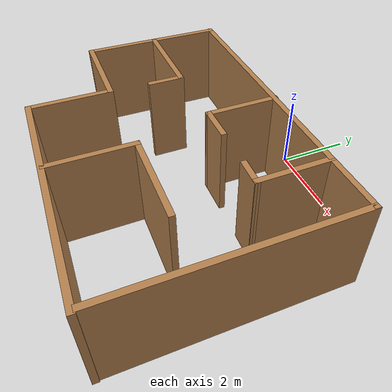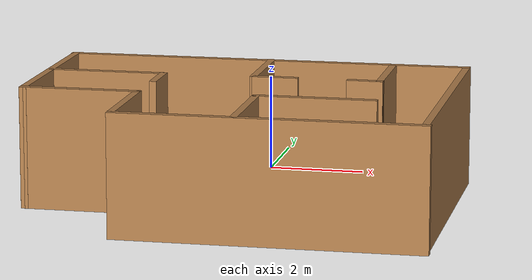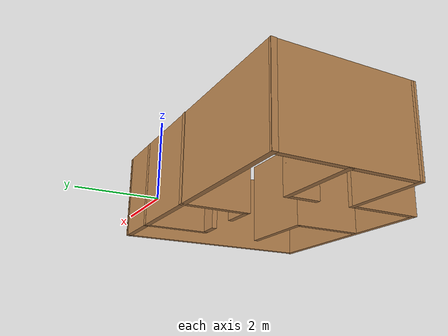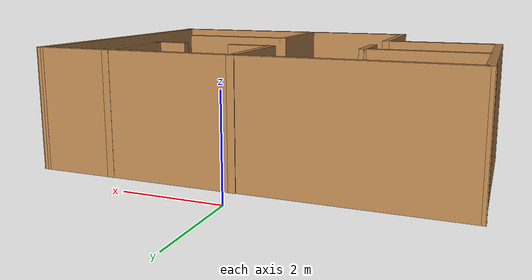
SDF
<?xml version='1.0'?>
<sdf version='1.7'>
  <model name='world'>
    <pose>0.065109 -3.3775 0 0 -0 0</pose>
    <link name='Wall_12'>
      <collision name='Wall_12_Collision'>
        <geometry>
          <box>
            <size>2 0.15 2.5</size>
          </box>
        </geometry>
        <pose>0 0 1.25 0 -0 0</pose>
      </collision>
      <visual name='Wall_12_Visual'>
        <pose>0 0 1.25 0 -0 0</pose>
        <geometry>
          <box>
            <size>2 0.15 2.5</size>
          </box>
        </geometry>
        <material>
          <script>
            <uri>file://media/materials/scripts/gazebo.material</uri>
            <name>Gazebo/Wood</name>
          </script>
          <ambient>1 1 1 1</ambient>
        </material>
        <meta>
          <layer>0</layer>
        </meta>
      </visual>
      <pose>0.074891 1.7425 0 0 -0 -1.5708</pose>
    </link>
    <link name='Wall_13'>
      <collision name='Wall_13_Collision'>
        <geometry>
          <box>
            <size>1 0.15 2.5</size>
          </box>
        </geometry>
        <pose>0 0 1.25 0 -0 0</pose>
      </collision>
      <visual name='Wall_13_Visual'>
        <pose>0 0 1.25 0 -0 0</pose>
        <geometry>
          <box>
            <size>1 0.15 2.5</size>
          </box>
        </geometry>
        <material>
          <script>
            <uri>file://media/materials/scripts/gazebo.material</uri>
            <name>Gazebo/Wood</name>
          </script>
          <ambient>1 1 1 1</ambient>
        </material>
        <meta>
          <layer>0</layer>
        </meta>
      </visual>
      <pose>0.499891 0.8175 0 0 -0 0</pose>
    </link>
    <link name='Wall_15'>
      <collision name='Wall_15_Collision'>
        <geometry>
          <box>
            <size>0.75 0.15 2.5</size>
          </box>
        </geometry>
        <pose>0 0 1.25 0 -0 0</pose>
      </collision>
      <visual name='Wall_15_Visual'>
        <pose>0 0 1.25 0 -0 0</pose>
        <geometry>
          <box>
            <size>0.75 0.15 2.5</size>
          </box>
        </geometry>
        <material>
          <script>
            <uri>file://media/materials/scripts/gazebo.material</uri>
            <name>Gazebo/Wood</name>
          </script>
          <ambient>1 1 1 1</ambient>
        </material>
        <meta>
          <layer>0</layer>
        </meta>
      </visual>
      <pose>2.38489 0.8075 0 0 -0 -0.033321</pose>
    </link>
    <link name='Wall_16'>
      <collision name='Wall_16_Collision'>
        <geometry>
          <box>
            <size>2 0.15 2.5</size>
          </box>
        </geometry>
        <pose>0 0 1.25 0 -0 0</pose>
      </collision>
      <visual name='Wall_16_Visual'>
        <pose>0 0 1.25 0 -0 0</pose>
        <geometry>
          <box>
            <size>2 0.15 2.5</size>
          </box>
        </geometry>
        <material>
          <script>
            <uri>file://media/materials/scripts/gazebo.material</uri>
            <name>Gazebo/Wood</name>
          </script>
          <ambient>1 1 1 1</ambient>
        </material>
        <meta>
          <layer>0</layer>
        </meta>
      </visual>
      <pose>2.68489 1.7325 0 0 -0 1.5708</pose>
    </link>
    <link name='Wall_18'>
      <collision name='Wall_18_Collision'>
        <geometry>
          <box>
            <size>2.5 0.15 2.5</size>
          </box>
        </geometry>
        <pose>0 0 1.25 0 -0 0</pose>
      </collision>
      <visual name='Wall_18_Visual'>
        <pose>0 0 1.25 0 -0 0</pose>
        <geometry>
          <box>
            <size>2.5 0.15 2.5</size>
          </box>
        </geometry>
        <material>
          <script>
            <uri>file://media/materials/scripts/gazebo.material</uri>
            <name>Gazebo/Wood</name>
          </script>
          <ambient>1 1 1 1</ambient>
        </material>
        <meta>
          <layer>0</layer>
        </meta>
      </visual>
      <pose>-2.99011 0.7575 0 0 -0 0</pose>
    </link>
    <link name='Wall_19'>
      <collision name='Wall_19_Collision'>
        <geometry>
          <box>
            <size>1 0.15 2.5</size>
          </box>
        </geometry>
        <pose>0 0 1.25 0 -0 0</pose>
      </collision>
      <visual name='Wall_19_Visual'>
        <pose>0 0 1.25 0 -0 0</pose>
        <geometry>
          <box>
            <size>1 0.15 2.5</size>
          </box>
        </geometry>
        <material>
          <script>
            <uri>file://media/materials/scripts/gazebo.material</uri>
            <name>Gazebo/Wood</name>
          </script>
          <ambient>1 1 1 1</ambient>
        </material>
        <meta>
          <layer>0</layer>
        </meta>
      </visual>
      <pose>-1.81511 0.3325 0 0 -0 -1.5708</pose>
    </link>
    <link name='Wall_24'>
      <collision name='Wall_24_Collision'>
        <geometry>
          <box>
            <size>6 0.15 2.5</size>
          </box>
        </geometry>
        <pose>0 0 1.25 0 -0 0</pose>
      </collision>
      <visual name='Wall_24_Visual'>
        <pose>0 0 1.25 0 -0 0</pose>
        <geometry>
          <box>
            <size>6 0.15 2.5</size>
          </box>
        </geometry>
        <material>
          <script>
            <uri>file://media/materials/scripts/gazebo.material</uri>
            <name>Gazebo/Wood</name>
          </script>
          <ambient>1 1 1 1</ambient>
        </material>
        <meta>
          <layer>0</layer>
        </meta>
      </visual>
      <pose>4.2101 -0.2675 0 0 -0 1.5656</pose>
    </link>
    <link name='Wall_27'>
      <collision name='Wall_27_Collision'>
        <geometry>
          <box>
            <size>8.57001 0.15 2.5</size>
          </box>
        </geometry>
        <pose>0 0 1.25 0 -0 0</pose>
      </collision>
      <visual name='Wall_27_Visual'>
        <pose>0 0 1.25 0 -0 0</pose>
        <geometry>
          <box>
            <size>8.57001 0.15 2.5</size>
          </box>
        </geometry>
        <material>
          <script>
            <uri>file://media/materials/scripts/gazebo.material</uri>
            <name>Gazebo/Wood</name>
          </script>
          <ambient>1 1 1 1</ambient>
        </material>
        <meta>
          <layer>0</layer>
        </meta>
      </visual>
      <pose>0.0001 2.6525 0 0 -0 0.001188</pose>
    </link>
    <link name='Wall_29'>
      <collision name='Wall_29_Collision'>
        <geometry>
          <box>
            <size>2.25 0.15 2.5</size>
          </box>
        </geometry>
        <pose>0 0 1.25 0 -0 0</pose>
      </collision>
      <visual name='Wall_29_Visual'>
        <pose>0 0 1.25 0 -0 0</pose>
        <geometry>
          <box>
            <size>2.25 0.15 2.5</size>
          </box>
        </geometry>
        <material>
          <script>
            <uri>file://media/materials/scripts/gazebo.material</uri>
            <name>Gazebo/Wood</name>
          </script>
          <ambient>1 1 1 1</ambient>
        </material>
        <meta>
          <layer>0</layer>
        </meta>
      </visual>
      <pose>-1.87511 -2.2525 0 0 -0 -1.5708</pose>
    </link>
    <link name='Wall_30'>
      <collision name='Wall_30_Collision'>
        <geometry>
          <box>
            <size>6.25 0.15 2.5</size>
          </box>
        </geometry>
        <pose>0 0 1.25 0 -0 0</pose>
      </collision>
      <visual name='Wall_30_Visual'>
        <pose>0 0 1.25 0 -0 0</pose>
        <geometry>
          <box>
            <size>6.25 0.15 2.5</size>
          </box>
        </geometry>
        <material>
          <script>
            <uri>file://media/materials/scripts/gazebo.material</uri>
            <name>Gazebo/Wood</name>
          </script>
          <ambient>1 1 1 1</ambient>
        </material>
        <meta>
          <layer>0</layer>
        </meta>
      </visual>
      <pose>1.17489 -3.3025 0 0 -0 0</pose>
    </link>
    <link name='Wall_32'>
      <collision name='Wall_32_Collision'>
        <geometry>
          <box>
            <size>2.25 0.15 2.5</size>
          </box>
        </geometry>
        <pose>0 0 1.25 0 -0 0</pose>
      </collision>
      <visual name='Wall_32_Visual'>
        <pose>0 0 1.25 0 -0 0</pose>
        <geometry>
          <box>
            <size>2.25 0.15 2.5</size>
          </box>
        </geometry>
        <material>
          <script>
            <uri>file://media/materials/scripts/gazebo.material</uri>
            <name>Gazebo/Wood</name>
          </script>
          <ambient>1 1 1 1</ambient>
        </material>
        <meta>
          <layer>0</layer>
        </meta>
      </visual>
      <pose>0.523371 -2.19862 0 0 -0 1.5708</pose>
    </link>
    <link name='Wall_33'>
      <collision name='Wall_33_Collision'>
        <geometry>
          <box>
            <size>2.5 0.15 2.5</size>
          </box>
        </geometry>
        <pose>0 0 1.25 0 -0 0</pose>
      </collision>
      <visual name='Wall_33_Visual'>
        <pose>0 0 1.25 0 -0 0</pose>
        <geometry>
          <box>
            <size>2.5 0.15 2.5</size>
          </box>
        </geometry>
        <material>
          <script>
            <uri>file://media/materials/scripts/gazebo.material</uri>
            <name>Gazebo/Wood</name>
          </script>
          <ambient>1 1 1 1</ambient>
        </material>
        <meta>
          <layer>0</layer>
        </meta>
      </visual>
      <pose>1.69837 -1.14862 0 0 -0 0</pose>
    </link>
    <link name='Wall_8'>
      <collision name='Wall_8_Collision'>
        <geometry>
          <box>
            <size>2.5 0.15 2.5</size>
          </box>
        </geometry>
        <pose>0 0 1.25 0 -0 0</pose>
      </collision>
      <visual name='Wall_8_Visual'>
        <pose>0 0 1.25 0 -0 0</pose>
        <geometry>
          <box>
            <size>2.5 0.15 2.5</size>
          </box>
        </geometry>
        <material>
          <script>
            <uri>file://media/materials/scripts/gazebo.material</uri>
            <name>Gazebo/Wood</name>
          </script>
          <ambient>1 1 1 1</ambient>
        </material>
        <meta>
          <layer>0</layer>
        </meta>
      </visual>
      <pose>-3.05011 -1.2025 0 0 -0 3.14159</pose>
    </link>
    <link name='Wall_9'>
      <collision name='Wall_9_Collision'>
        <geometry>
          <box>
            <size>4 0.15 2.5</size>
          </box>
        </geometry>
        <pose>0 0 1.25 0 -0 0</pose>
      </collision>
      <visual name='Wall_9_Visual'>
        <pose>0 0 1.25 0 -0 0</pose>
        <geometry>
          <box>
            <size>4 0.15 2.5</size>
          </box>
        </geometry>
        <material>
          <script>
            <uri>file://media/materials/scripts/gazebo.material</uri>
            <name>Gazebo/Wood</name>
          </script>
          <ambient>1 1 1 1</ambient>
        </material>
        <meta>
          <layer>0</layer>
        </meta>
      </visual>
      <pose>-4.2099 0.7225 0 0 -0 1.5629</pose>
    </link>
    <static>1</static>
  </model>
</sdf>
